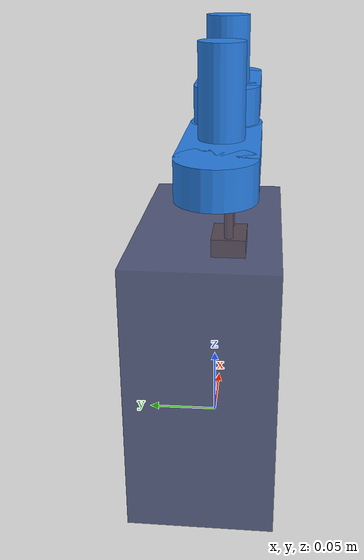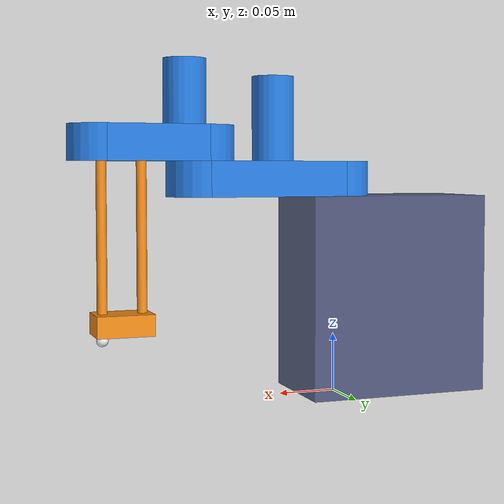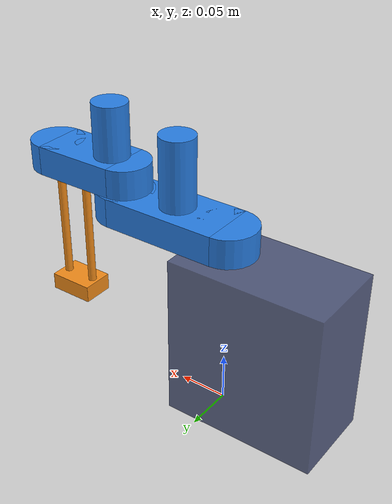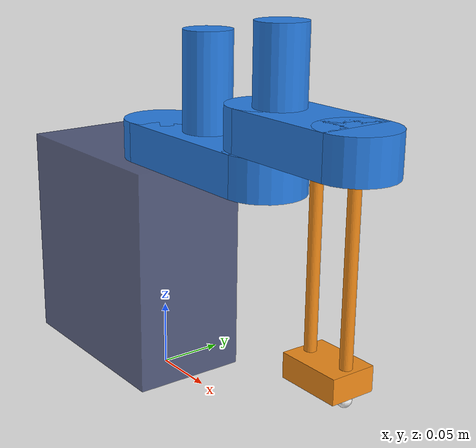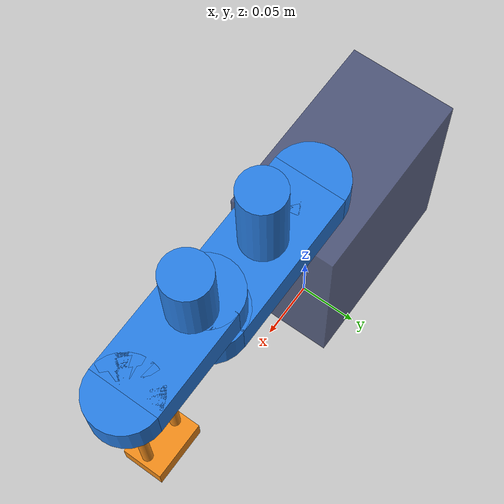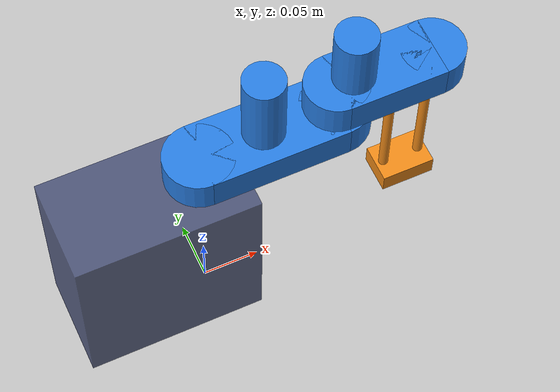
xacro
<?xml version="1.0"?>
<robot xmlns:xacro="http://www.ros.org/wiki/xacro" name="scara">

  <!-- use_gz:=true agrega lo que necesita Gazebo (world fijo, ros2_control y su plugin).
       Con false (por defecto) el modelo es el de las fases 1 y 2, para RViz. -->
  <xacro:arg name="use_gz" default="false"/>

  <!-- ============ Parametros (mm -> m) ============ -->
  <xacro:property name="d1"      value="0.120"/>   <!-- largo eslabon 1 -->
  <xacro:property name="d2"      value="0.085"/>   <!-- largo eslabon 2 -->
  <xacro:property name="d3"      value="0.172"/>   <!-- piso -> cara inferior del eslabon 1 (D3_BASE) -->
  <xacro:property name="t1"      value="0.030"/>   <!-- espesor eslabon 1 -->
  <xacro:property name="t2"      value="0.030"/>   <!-- espesor eslabon 2 -->
  <xacro:property name="z_top"   value="0.202"/>   <!-- Z_TOP: altura de la punta con joint3 = 0 -->

  <!-- Limites -->
  <xacro:property name="th1_lim" value="${radians(85.0)}"/>
  <xacro:property name="th2_lim" value="${radians(90.0)}"/>
  <xacro:property name="z_min"   value="0.0"/>      <!-- M3_BOTTOM_MM -->
  <xacro:property name="z_max"   value="0.1092"/>   <!-- M3_TOP_MM -->

  <!-- ============ Materiales ============ -->
  <material name="base_gray"><color rgba="0.23 0.27 0.44 0.80"/></material>
  <material name="link_blue"><color rgba="0.16 0.50 0.90 1.0"/></material>
  <material name="tool_orange"><color rgba="0.95 0.55 0.10 1.0"/></material>
  <material name="tcp_white"><color rgba="0.95 0.95 0.95 1.0"/></material>

  <!-- ============ Macros de geometria ============ -->
  <xacro:macro name="box_vis" params="sx sy sz x y z mat">
    <visual>
      <origin xyz="${x} ${y} ${z}" rpy="0 0 0"/>
      <geometry><box size="${sx} ${sy} ${sz}"/></geometry>
      <material name="${mat}"/>
    </visual>
  </xacro:macro>

  <!-- Cilindro con eje en z (igual que en la escena 3D despues de rotarlo) -->
  <xacro:macro name="cyl_vis" params="r h x y z mat">
    <visual>
      <origin xyz="${x} ${y} ${z}" rpy="0 0 0"/>
      <geometry><cylinder radius="${r}" length="${h}"/></geometry>
      <material name="${mat}"/>
    </visual>
  </xacro:macro>

  <xacro:macro name="box_inertial" params="m sx sy sz x y z">
    <inertial>
      <origin xyz="${x} ${y} ${z}" rpy="0 0 0"/>
      <mass value="${m}"/>
      <inertia ixx="${m/12*(sy*sy+sz*sz)}" ixy="0" ixz="0"
               iyy="${m/12*(sx*sx+sz*sz)}" iyz="0"
               izz="${m/12*(sx*sx+sy*sy)}"/>
    </inertial>
  </xacro:macro>

  <!-- ============ base_link: columna fija ============ -->
  <link name="base_link">
    <xacro:box_inertial m="2.0" sx="0.160" sy="0.090" sz="${d3}" x="-0.045" y="0" z="${d3/2}"/>
    <xacro:box_vis sx="0.160" sy="0.090" sz="${d3}" x="-0.045" y="0" z="${d3/2}" mat="base_gray"/>
  </link>

  <!-- ============ Eslabon 1 (marco en z = d3, gira th1) ============ -->
  <link name="link1">
    <xacro:box_inertial m="0.35" sx="0.150" sy="0.060" sz="0.102" x="0.060" y="0" z="0.051"/>
    <xacro:box_vis sx="${d1}" sy="0.060" sz="${t1}" x="${d1/2}" y="0" z="${t1/2}" mat="link_blue"/>
    <xacro:cyl_vis r="0.030" h="${t1}" x="0"    y="0" z="${t1/2}" mat="link_blue"/>
    <xacro:cyl_vis r="0.030" h="${t1}" x="${d1}" y="0" z="${t1/2}" mat="link_blue"/>
    <!-- cilindro vertical (z 202..274 mm) -->
    <xacro:cyl_vis r="0.018" h="0.072" x="0.0565" y="0" z="0.066" mat="link_blue"/>
  </link>

  <joint name="joint1" type="revolute">
    <parent link="base_link"/>
    <child link="link1"/>
    <origin xyz="0 0 ${d3}" rpy="0 0 0"/>
    <axis xyz="0 0 1"/>
    <limit lower="${-th1_lim}" upper="${th1_lim}" effort="10" velocity="10.0"/>
  </joint>

  <!-- ============ Eslabon 2 (marco en x = d1, z = t1 del eslabon 1; gira th2) ============ -->
  <link name="link2">
    <xacro:box_inertial m="0.25" sx="0.115" sy="0.055" sz="0.085" x="0.0425" y="0" z="0.0425"/>
    <xacro:box_vis sx="${d2}" sy="0.055" sz="${t2}" x="${d2/2}" y="0" z="${t2/2}" mat="link_blue"/>
    <xacro:cyl_vis r="0.0275" h="${t2}" x="0"    y="0" z="${t2/2}" mat="link_blue"/>
    <xacro:cyl_vis r="0.0275" h="${t2}" x="${d2}" y="0" z="${t2/2}" mat="link_blue"/>
    <!-- cilindro vertical (z 232..287 mm) -->
    <xacro:cyl_vis r="0.018" h="0.055" x="0.0145" y="0" z="0.0575" mat="link_blue"/>
  </link>

  <joint name="joint2" type="revolute">
    <parent link="link1"/>
    <child link="link2"/>
    <origin xyz="${d1} 0 ${t1}" rpy="0 0 0"/>
    <axis xyz="0 0 1"/>
    <limit lower="${-th2_lim}" upper="${th2_lim}" effort="10" velocity="10.0"/>
  </joint>

  <!-- ============ Efector (marco en x = d2 del eslabon 2; sube y baja) ============ -->
  <link name="tool_link">
    <xacro:box_inertial m="0.10" sx="0.050" sy="0.034" sz="0.163" x="-0.0167" y="0" z="0.0815"/>
    <!-- carro -->
    <xacro:box_vis sx="0.048" sy="0.034" sz="0.018" x="-0.0167" y="0" z="0.013" mat="tool_orange"/>
    <!-- boquilla -->
    <xacro:cyl_vis r="0.0022" h="0.010" x="0" y="0" z="0.005" mat="tool_orange"/>
    <!-- dos varillas (tornillo y guia) -->
    <xacro:cyl_vis r="0.00425" h="0.135" x="0"        y="0" z="0.0895" mat="tool_orange"/>
    <xacro:cyl_vis r="0.00425" h="0.135" x="-0.03335" y="0" z="0.0895" mat="tool_orange"/>
    <!-- placa superior -->
    <xacro:box_vis sx="0.048" sy="0.024" sz="0.006" x="-0.0167" y="0" z="0.160" mat="tool_orange"/>
  </link>

  <joint name="joint3" type="prismatic">
    <parent link="link2"/>
    <child link="tool_link"/>
    <origin xyz="${d2} 0 0" rpy="0 0 0"/>
    <axis xyz="0 0 1"/>
    <!-- valor = (Q3 - 202 mm)/1000  ->  Q3 = 0 mm: -0.202 m ; Q3 = 109.2 mm: -0.0928 m -->
    <limit lower="${z_min - z_top}" upper="${z_max - z_top}" effort="50" velocity="1.0"/>
  </joint>

  <!-- ============ Punta (TCP): marca la posicion que reporta Q3 ============ -->
  <link name="tcp">
    <visual>
      <geometry><sphere radius="0.005"/></geometry>
      <material name="tcp_white"/>
    </visual>
  </link>

  <joint name="tcp_joint" type="fixed">
    <parent link="tool_link"/>
    <child link="tcp"/>
    <origin xyz="0 0 0" rpy="0 0 0"/>
  </joint>

  <!-- ============ Solo con use_gz:=true (Gazebo) ============ -->
  <xacro:if value="$(arg use_gz)">

    <!-- Sin esto la base caeria por gravedad -->
    <link name="world"/>
    <joint name="world_fixed" type="fixed">
      <parent link="world"/>
      <child link="base_link"/>
      <origin xyz="0 0 0" rpy="0 0 0"/>
    </joint>

    <!-- Las 3 articulaciones se mandan por posicion (JointGroupPositionController).
         joint3 arranca en la posicion de homing (Q3 = 54.6 mm -> -0.1474 m):
         con 0 quedaria fuera de su limite. -->
    <ros2_control name="GazeboSimSystem" type="system">
      <hardware>
        <plugin>gz_ros2_control/GazeboSimSystem</plugin>
      </hardware>
      <joint name="joint1">
        <command_interface name="position"/>
        <state_interface name="position"><param name="initial_value">0.0</param></state_interface>
        <state_interface name="velocity"/>
      </joint>
      <joint name="joint2">
        <command_interface name="position"/>
        <state_interface name="position"><param name="initial_value">0.0</param></state_interface>
        <state_interface name="velocity"/>
      </joint>
      <joint name="joint3">
        <command_interface name="position"/>
        <state_interface name="position"><param name="initial_value">-0.1474</param></state_interface>
        <state_interface name="velocity"/>
      </joint>
    </ros2_control>

    <gazebo>
      <plugin filename="libgz_ros2_control-system.so"
              name="gz_ros2_control::GazeboSimROS2ControlPlugin">
        <parameters>$(find scara_description)/config/scara_controllers.yaml</parameters>
      </plugin>
    </gazebo>

  </xacro:if>

</robot>
